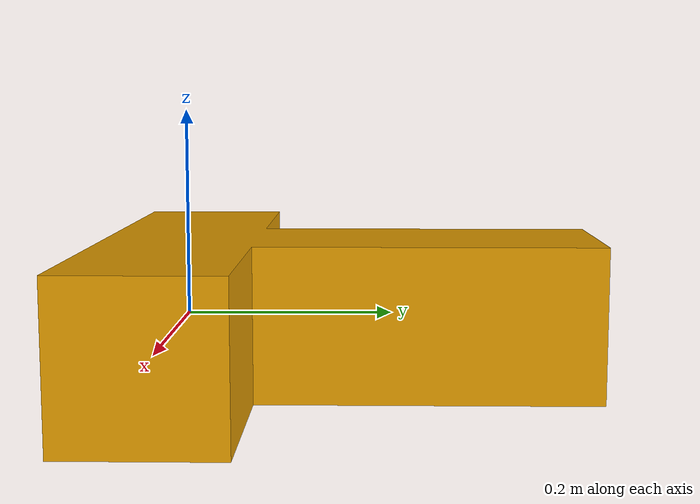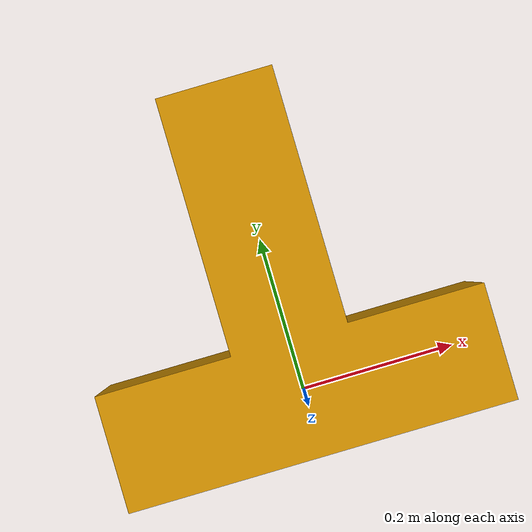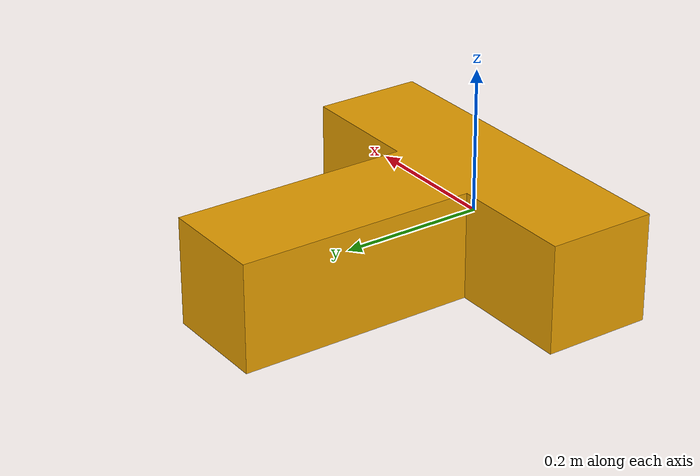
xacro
<?xml version="1.0" ?>
<robot name="t_model">

  <!-- Define the links -->
  <link name="base_link">
    <visual>
      <origin xyz="-0.25 -0.08 -0.075" rpy="0 0 0"/>
      <geometry>
        <mesh filename="file://$(find spd_example)/urdf/zhanibekov_effect_model.STL" scale="5 5 5"/>
      </geometry>
    </visual>
      <inertial>
      <mass value="1.0"/>
      <inertia ixx="1.0" ixy="0.0" ixz="0.0" iyy="0.5" iyz="0.0" izz="0.1"/>
    </inertial>
  </link>

</robot>
